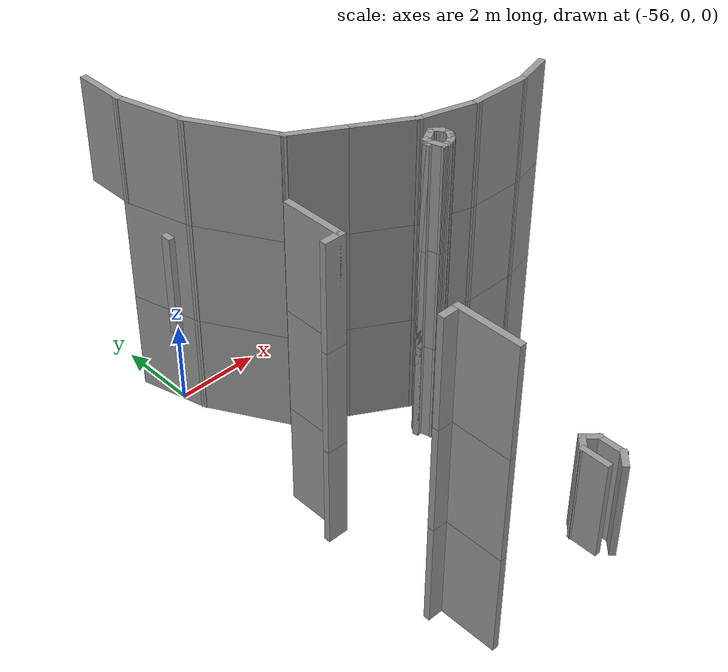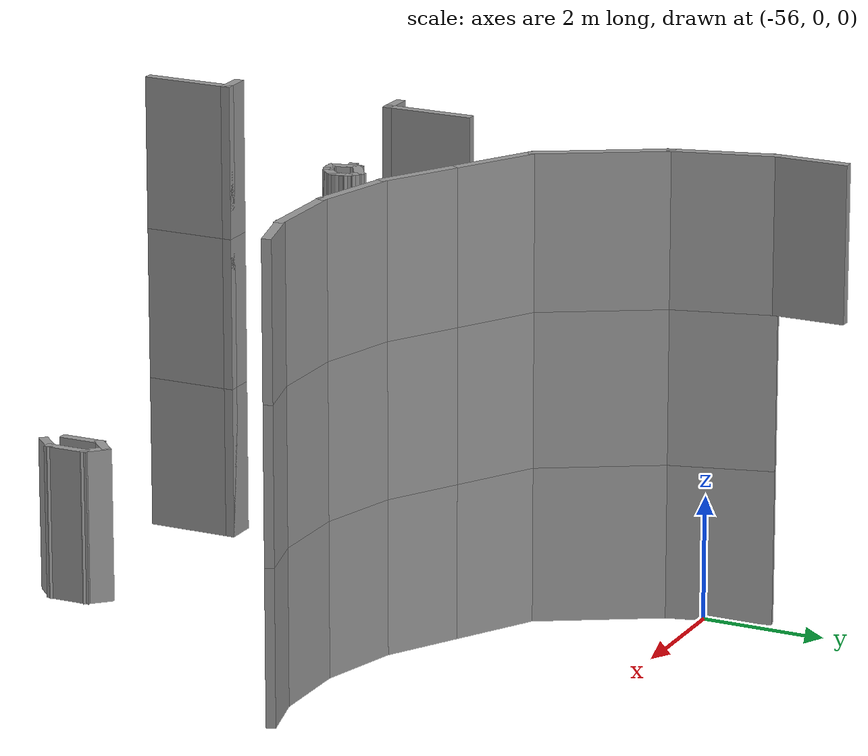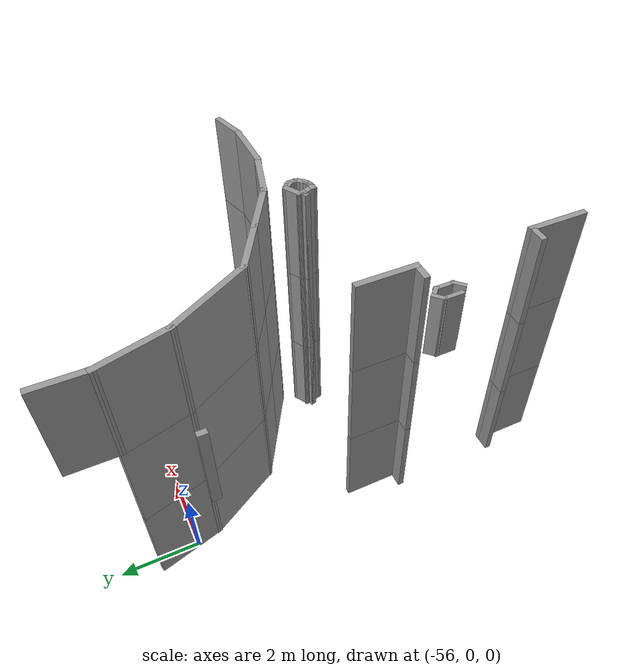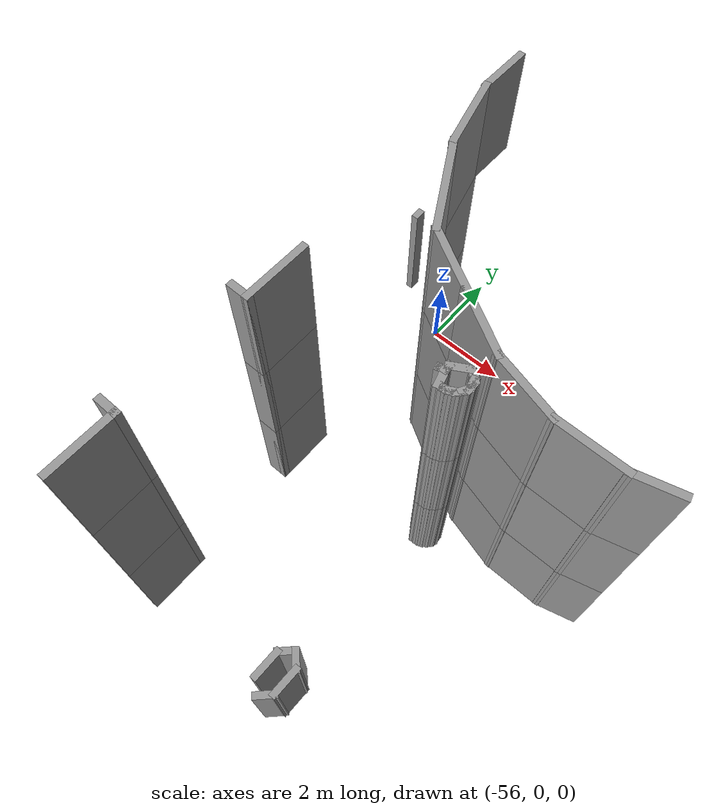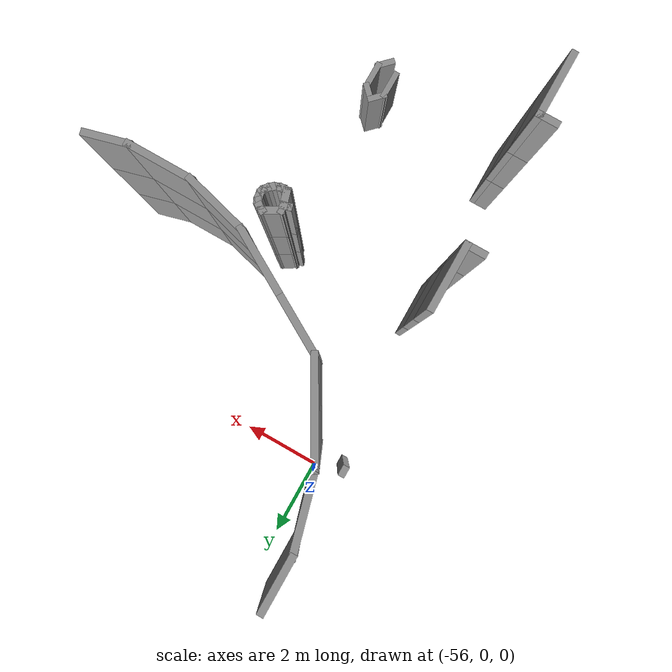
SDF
<sdf version="1.7">
 <model name="mapagazebo">
  <pose>-4.67869 9.01252 0 0 -0 0</pose>
  <link name="Wall_1462">
   <collision name="Wall_1462_Collision">
    <geometry><box><size>1.5 0.15 2.5</size></box></geometry>
    <pose>0 0 1.25 0 -0 0</pose>
   </collision>
   <visual name="Wall_1462_Visual">
    <pose>0 0 1.25 0 -0 0</pose>
    <geometry><box><size>1.5 0.15 2.5</size></box></geometry>
    <material>
     <script><uri>file://media/materials/scripts/gazebo.material</uri><name>Gazebo/Grey</name></script>
     <ambient>1 1 1 1</ambient>
    </material>
    <meta><layer>2</layer></meta>
   </visual>
   <pose>-51.5749 -18.0911 5 0 -0 1.5708</pose>
  </link>
  <link name="Wall_1463">
   <collision name="Wall_1463_Collision">
    <geometry><box><size>0.5 0.15 2.5</size></box></geometry>
    <pose>0 0 1.25 0 -0 0</pose>
   </collision>
   <visual name="Wall_1463_Visual">
    <pose>0 0 1.25 0 -0 0</pose>
    <geometry><box><size>0.5 0.15 2.5</size></box></geometry>
    <material>
     <script><uri>file://media/materials/scripts/gazebo.material</uri><name>Gazebo/Grey</name></script>
     <ambient>1 1 1 1</ambient>
    </material>
    <meta><layer>2</layer></meta>
   </visual>
   <pose>-51.7499 -17.4161 5 0 -0 3.14159</pose>
  </link>
  <link name="Wall_1465">
   <collision name="Wall_1465_Collision">
    <geometry><box><size>0.5 0.15 2.5</size></box></geometry>
    <pose>0 0 1.25 0 -0 0</pose>
   </collision>
   <visual name="Wall_1465_Visual">
    <pose>0 0 1.25 0 -0 0</pose>
    <geometry><box><size>0.5 0.15 2.5</size></box></geometry>
    <material>
     <script><uri>file://media/materials/scripts/gazebo.material</uri><name>Gazebo/Grey</name></script>
     <ambient>1 1 1 1</ambient>
    </material>
    <meta><layer>2</layer></meta>
   </visual>
   <pose>-51.7499 -14.5661 5 0 -0 0</pose>
  </link>
  <link name="Wall_1466">
   <collision name="Wall_1466_Collision">
    <geometry><box><size>1.5 0.15 2.5</size></box></geometry>
    <pose>0 0 1.25 0 -0 0</pose>
   </collision>
   <visual name="Wall_1466_Visual">
    <pose>0 0 1.25 0 -0 0</pose>
    <geometry><box><size>1.5 0.15 2.5</size></box></geometry>
    <material>
     <script><uri>file://media/materials/scripts/gazebo.material</uri><name>Gazebo/Grey</name></script>
     <ambient>1 1 1 1</ambient>
    </material>
    <meta><layer>2</layer></meta>
   </visual>
   <pose>-51.5749 -13.8911 5 0 -0 1.5708</pose>
  </link>
  <link name="Wall_1539">
   <collision name="Wall_1539_Collision">
    <geometry><box><size>1.25 0.15 2.5</size></box></geometry>
    <pose>0 0 1.25 0 -0 0</pose>
   </collision>
   <visual name="Wall_1539_Visual">
    <pose>0 0 1.25 0 -0 0</pose>
    <geometry><box><size>1.25 0.15 2.5</size></box></geometry>
    <material>
     <script><uri>file://media/materials/scripts/gazebo.material</uri><name>Gazebo/Grey</name></script>
     <ambient>1 1 1 1</ambient>
    </material>
    <meta><layer>2</layer></meta>
   </visual>
   <pose>-51.5751 -7.4965 5 0 -0 1.5708</pose>
  </link>
  <link name="Wall_1556">
   <collision name="Wall_1556_Collision">
    <geometry><box><size>1.75 0.15 2.5</size></box></geometry>
    <pose>0 0 1.25 0 -0 0</pose>
   </collision>
   <visual name="Wall_1556_Visual">
    <pose>0 0 1.25 0 -0 0</pose>
    <geometry><box><size>1.75 0.15 2.5</size></box></geometry>
    <material>
     <script><uri>file://media/materials/scripts/gazebo.material</uri><name>Gazebo/Grey</name></script>
     <ambient>1 1 1 1</ambient>
    </material>
    <meta><layer>2</layer></meta>
   </visual>
   <pose>-51.368 -8.81924 5 0 -0 -1.309</pose>
  </link>
  <link name="Wall_1557">
   <collision name="Wall_1557_Collision">
    <geometry><box><size>2.25 0.15 2.5</size></box></geometry>
    <pose>0 0 1.25 0 -0 0</pose>
   </collision>
   <visual name="Wall_1557_Visual">
    <pose>0 0 1.25 0 -0 0</pose>
    <geometry><box><size>2.25 0.15 2.5</size></box></geometry>
    <material>
     <script><uri>file://media/materials/scripts/gazebo.material</uri><name>Gazebo/Grey</name></script>
     <ambient>1 1 1 1</ambient>
    </material>
    <meta><layer>2</layer></meta>
   </visual>
   <pose>-50.636 -10.5013 5 0 -0 -1.0472</pose>
  </link>
  <link name="Wall_1558">
   <collision name="Wall_1558_Collision">
    <geometry><box><size>1.5 0.15 2.5</size></box></geometry>
    <pose>0 0 1.25 0 -0 0</pose>
   </collision>
   <visual name="Wall_1558_Visual">
    <pose>0 0 1.25 0 -0 0</pose>
    <geometry><box><size>1.5 0.15 2.5</size></box></geometry>
    <material>
     <script><uri>file://media/materials/scripts/gazebo.material</uri><name>Gazebo/Grey</name></script>
     <ambient>1 1 1 1</ambient>
    </material>
    <meta><layer>2</layer></meta>
   </visual>
   <pose>-49.5264 -11.7481 5 0 -0 -0.523599</pose>
  </link>
  <link name="Wall_1559">
   <collision name="Wall_1559_Collision">
    <geometry><box><size>1.5 0.15 2.5</size></box></geometry>
    <pose>0 0 1.25 0 -0 0</pose>
   </collision>
   <visual name="Wall_1559_Visual">
    <pose>0 0 1.25 0 -0 0</pose>
    <geometry><box><size>1.5 0.15 2.5</size></box></geometry>
    <material>
     <script><uri>file://media/materials/scripts/gazebo.material</uri><name>Gazebo/Grey</name></script>
     <ambient>1 1 1 1</ambient>
    </material>
    <meta><layer>2</layer></meta>
   </visual>
   <pose>-48.3573 -12.4231 5 0 -0 -0.523599</pose>
  </link>
  <link name="Wall_1560">
   <collision name="Wall_1560_Collision">
    <geometry><box><size>1.5 0.15 2.5</size></box></geometry>
    <pose>0 0 1.25 0 -0 0</pose>
   </collision>
   <visual name="Wall_1560_Visual">
    <pose>0 0 1.25 0 -0 0</pose>
    <geometry><box><size>1.5 0.15 2.5</size></box></geometry>
    <material>
     <script><uri>file://media/materials/scripts/gazebo.material</uri><name>Gazebo/Grey</name></script>
     <ambient>1 1 1 1</ambient>
    </material>
    <meta><layer>2</layer></meta>
   </visual>
   <pose>-47.1207 -12.9353 5 0 -0 -0.261799</pose>
  </link>
  <link name="Wall_1561">
   <collision name="Wall_1561_Collision">
    <geometry><box><size>1.5 0.15 2.5</size></box></geometry>
    <pose>0 0 1.25 0 -0 0</pose>
   </collision>
   <visual name="Wall_1561_Visual">
    <pose>0 0 1.25 0 -0 0</pose>
    <geometry><box><size>1.5 0.15 2.5</size></box></geometry>
    <material>
     <script><uri>file://media/materials/scripts/gazebo.material</uri><name>Gazebo/Grey</name></script>
     <ambient>1 1 1 1</ambient>
    </material>
    <meta><layer>2</layer></meta>
   </visual>
   <pose>-45.7937 -13.11 5 0 -0 0</pose>
  </link>
  <link name="Wall_1562">
   <collision name="Wall_1562_Collision">
    <geometry><box><size>1 0.15 2.5</size></box></geometry>
    <pose>0 0 1.25 0 -0 0</pose>
   </collision>
   <visual name="Wall_1562_Visual">
    <pose>0 0 1.25 0 -0 0</pose>
    <geometry><box><size>1 0.15 2.5</size></box></geometry>
    <material>
     <script><uri>file://media/materials/scripts/gazebo.material</uri><name>Gazebo/Grey</name></script>
     <ambient>1 1 1 1</ambient>
    </material>
    <meta><layer>2</layer></meta>
   </visual>
   <pose>-44.7082 -13 5 0 -0 0.261799</pose>
  </link>
  <link name="Wall_1575">
   <collision name="Wall_1575_Collision">
    <geometry><box><size>0.25 0.15 2.5</size></box></geometry>
    <pose>0 0 1.25 0 -0 0</pose>
   </collision>
   <visual name="Wall_1575_Visual">
    <pose>0 0 1.25 0 -0 0</pose>
    <geometry><box><size>0.25 0.15 2.5</size></box></geometry>
    <material>
     <script><uri>file://media/materials/scripts/gazebo.material</uri><name>Gazebo/Grey</name></script>
     <ambient>1 1 1 1</ambient>
    </material>
    <meta><layer>2</layer></meta>
   </visual>
   <pose>-48.2432 -13.4784 5 0 -0 1.5708</pose>
  </link>
  <link name="Wall_1576">
   <collision name="Wall_1576_Collision">
    <geometry><box><size>0.5 0.15 2.5</size></box></geometry>
    <pose>0 0 1.25 0 -0 0</pose>
   </collision>
   <visual name="Wall_1576_Visual">
    <pose>0 0 1.25 0 -0 0</pose>
    <geometry><box><size>0.5 0.15 2.5</size></box></geometry>
    <material>
     <script><uri>file://media/materials/scripts/gazebo.material</uri><name>Gazebo/Grey</name></script>
     <ambient>1 1 1 1</ambient>
    </material>
    <meta><layer>2</layer></meta>
   </visual>
   <pose>-48.0916 -13.3409 5 0 -0 0.523599</pose>
  </link>
  <link name="Wall_1577">
   <collision name="Wall_1577_Collision">
    <geometry><box><size>0.25 0.15 2.5</size></box></geometry>
    <pose>0 0 1.25 0 -0 0</pose>
   </collision>
   <visual name="Wall_1577_Visual">
    <pose>0 0 1.25 0 -0 0</pose>
    <geometry><box><size>0.25 0.15 2.5</size></box></geometry>
    <material>
     <script><uri>file://media/materials/scripts/gazebo.material</uri><name>Gazebo/Grey</name></script>
     <ambient>1 1 1 1</ambient>
    </material>
    <meta><layer>2</layer></meta>
   </visual>
   <pose>-47.8968 -13.2784 5 0 -0 -0.523599</pose>
  </link>
  <link name="Wall_1578">
   <collision name="Wall_1578_Collision">
    <geometry><box><size>0.25 0.15 2.5</size></box></geometry>
    <pose>0 0 1.25 0 -0 0</pose>
   </collision>
   <visual name="Wall_1578_Visual">
    <pose>0 0 1.25 0 -0 0</pose>
    <geometry><box><size>0.25 0.15 2.5</size></box></geometry>
    <material>
     <script><uri>file://media/materials/scripts/gazebo.material</uri><name>Gazebo/Grey</name></script>
     <ambient>1 1 1 1</ambient>
    </material>
    <meta><layer>2</layer></meta>
   </visual>
   <pose>-47.8181 -13.3387 5 0 -0 -0.785398</pose>
  </link>
  <link name="Wall_1579">
   <collision name="Wall_1579_Collision">
    <geometry><box><size>0.25 0.15 2.5</size></box></geometry>
    <pose>0 0 1.25 0 -0 0</pose>
   </collision>
   <visual name="Wall_1579_Visual">
    <pose>0 0 1.25 0 -0 0</pose>
    <geometry><box><size>0.25 0.15 2.5</size></box></geometry>
    <material>
     <script><uri>file://media/materials/scripts/gazebo.material</uri><name>Gazebo/Grey</name></script>
     <ambient>1 1 1 1</ambient>
    </material>
    <meta><layer>2</layer></meta>
   </visual>
   <pose>-47.7698 -13.4224 5 0 -0 -1.309</pose>
  </link>
  <link name="Wall_1580">
   <collision name="Wall_1580_Collision">
    <geometry><box><size>0.25 0.15 2.5</size></box></geometry>
    <pose>0 0 1.25 0 -0 0</pose>
   </collision>
   <visual name="Wall_1580_Visual">
    <pose>0 0 1.25 0 -0 0</pose>
    <geometry><box><size>0.25 0.15 2.5</size></box></geometry>
    <material>
     <script><uri>file://media/materials/scripts/gazebo.material</uri><name>Gazebo/Grey</name></script>
     <ambient>1 1 1 1</ambient>
    </material>
    <meta><layer>2</layer></meta>
   </visual>
   <pose>-47.7569 -13.5207 5 0 -0 -1.5708</pose>
  </link>
  <link name="Wall_1581">
   <collision name="Wall_1581_Collision">
    <geometry><box><size>0.25 0.15 2.5</size></box></geometry>
    <pose>0 0 1.25 0 -0 0</pose>
   </collision>
   <visual name="Wall_1581_Visual">
    <pose>0 0 1.25 0 -0 0</pose>
    <geometry><box><size>0.25 0.15 2.5</size></box></geometry>
    <material>
     <script><uri>file://media/materials/scripts/gazebo.material</uri><name>Gazebo/Grey</name></script>
     <ambient>1 1 1 1</ambient>
    </material>
    <meta><layer>2</layer></meta>
   </visual>
   <pose>-47.7819 -13.614 5 0 -0 -2.0944</pose>
  </link>
  <link name="Wall_1582">
   <collision name="Wall_1582_Collision">
    <geometry><box><size>0.25 0.15 2.5</size></box></geometry>
    <pose>0 0 1.25 0 -0 0</pose>
   </collision>
   <visual name="Wall_1582_Visual">
    <pose>0 0 1.25 0 -0 0</pose>
    <geometry><box><size>0.25 0.15 2.5</size></box></geometry>
    <material>
     <script><uri>file://media/materials/scripts/gazebo.material</uri><name>Gazebo/Grey</name></script>
     <ambient>1 1 1 1</ambient>
    </material>
    <meta><layer>2</layer></meta>
   </visual>
   <pose>-47.8423 -13.6926 5 0 -0 -2.35619</pose>
  </link>
  <link name="Wall_1583">
   <collision name="Wall_1583_Collision">
    <geometry><box><size>0.25 0.15 2.5</size></box></geometry>
    <pose>0 0 1.25 0 -0 0</pose>
   </collision>
   <visual name="Wall_1583_Visual">
    <pose>0 0 1.25 0 -0 0</pose>
    <geometry><box><size>0.25 0.15 2.5</size></box></geometry>
    <material>
     <script><uri>file://media/materials/scripts/gazebo.material</uri><name>Gazebo/Grey</name></script>
     <ambient>1 1 1 1</ambient>
    </material>
    <meta><layer>2</layer></meta>
   </visual>
   <pose>-47.9209 -13.753 5 0 -0 -2.61799</pose>
  </link>
  <link name="Wall_1584">
   <collision name="Wall_1584_Collision">
    <geometry><box><size>0.25 0.15 2.5</size></box></geometry>
    <pose>0 0 1.25 0 -0 0</pose>
   </collision>
   <visual name="Wall_1584_Visual">
    <pose>0 0 1.25 0 -0 0</pose>
    <geometry><box><size>0.25 0.15 2.5</size></box></geometry>
    <material>
     <script><uri>file://media/materials/scripts/gazebo.material</uri><name>Gazebo/Grey</name></script>
     <ambient>1 1 1 1</ambient>
    </material>
    <meta><layer>2</layer></meta>
   </visual>
   <pose>-48.0125 -13.7909 5 0 -0 -2.87979</pose>
  </link>
  <link name="Wall_1585">
   <collision name="Wall_1585_Collision">
    <geometry><box><size>0.25 0.15 2.5</size></box></geometry>
    <pose>0 0 1.25 0 -0 0</pose>
   </collision>
   <visual name="Wall_1585_Visual">
    <pose>0 0 1.25 0 -0 0</pose>
    <geometry><box><size>0.25 0.15 2.5</size></box></geometry>
    <material>
     <script><uri>file://media/materials/scripts/gazebo.material</uri><name>Gazebo/Grey</name></script>
     <ambient>1 1 1 1</ambient>
    </material>
    <meta><layer>2</layer></meta>
   </visual>
   <pose>-48.1108 -13.8039 5 0 -0 3.14159</pose>
  </link>
  <link name="Wall_1586">
   <collision name="Wall_1586_Collision">
    <geometry><box><size>0.437557 0.15 2.5</size></box></geometry>
    <pose>0 0 1.25 0 -0 0</pose>
   </collision>
   <visual name="Wall_1586_Visual">
    <pose>0 0 1.25 0 -0 0</pose>
    <geometry><box><size>0.437557 0.15 2.5</size></box></geometry>
    <material>
     <script><uri>file://media/materials/scripts/gazebo.material</uri><name>Gazebo/Grey</name></script>
     <ambient>1 1 1 1</ambient>
    </material>
    <meta><layer>2</layer></meta>
   </visual>
   <pose>-48.202 -13.6661 5 0 -0 1.86142</pose>
  </link>
  <link name="Wall_1587">
   <collision name="Wall_1587_Collision">
    <geometry><box><size>0.25 0.15 2.5</size></box></geometry>
    <pose>0 0 1.25 0 -0 0</pose>
   </collision>
   <visual name="Wall_1587_Visual">
    <pose>0 0 1.25 0 -0 0</pose>
    <geometry><box><size>0.25 0.15 2.5</size></box></geometry>
    <material>
     <script><uri>file://media/materials/scripts/gazebo.material</uri><name>Gazebo/Grey</name></script>
     <ambient>1 1 1 1</ambient>
    </material>
    <meta><layer>2</layer></meta>
   </visual>
   <pose>-48.2915 -13.5413 5 0 -0 -2.87979</pose>
  </link>
  <link name="Wall_1588">
   <collision name="Wall_1588_Collision">
    <geometry><box><size>0.25 0.15 2.5</size></box></geometry>
    <pose>0 0 1.25 0 -0 0</pose>
   </collision>
   <visual name="Wall_1588_Visual">
    <pose>0 0 1.25 0 -0 0</pose>
    <geometry><box><size>0.25 0.15 2.5</size></box></geometry>
    <material>
     <script><uri>file://media/materials/scripts/gazebo.material</uri><name>Gazebo/Grey</name></script>
     <ambient>1 1 1 1</ambient>
    </material>
    <meta><layer>2</layer></meta>
   </visual>
   <pose>-48.2915 -13.5413 5 0 -0 0.261799</pose>
  </link>
  <link name="Wall_204">
   <collision name="Wall_204_Collision">
    <geometry><box><size>1.75 0.15 2.5</size></box></geometry>
    <pose>0 0 1.25 0 -0 0</pose>
   </collision>
   <visual name="Wall_204_Visual">
    <pose>0 0 1.25 0 -0 0</pose>
    <geometry><box><size>1.75 0.15 2.5</size></box></geometry>
    <material>
     <script><uri>file://media/materials/scripts/gazebo.material</uri><name>Gazebo/Grey</name></script>
     <ambient>1 1 1 1</ambient>
    </material>
    <meta><layer>0</layer></meta>
   </visual>
   <pose>-51.368 -8.81924 0 0 -0 -1.309</pose>
  </link>
  <link name="Wall_207">
   <collision name="Wall_207_Collision">
    <geometry><box><size>2.25 0.15 2.5</size></box></geometry>
    <pose>0 0 1.25 0 -0 0</pose>
   </collision>
   <visual name="Wall_207_Visual">
    <pose>0 0 1.25 0 -0 0</pose>
    <geometry><box><size>2.25 0.15 2.5</size></box></geometry>
    <material>
     <script><uri>file://media/materials/scripts/gazebo.material</uri><name>Gazebo/Grey</name></script>
     <ambient>1 1 1 1</ambient>
    </material>
    <meta><layer>0</layer></meta>
   </visual>
   <pose>-50.636 -10.5013 0 0 -0 -1.0472</pose>
  </link>
  <link name="Wall_213">
   <collision name="Wall_213_Collision">
    <geometry><box><size>1.5 0.15 2.5</size></box></geometry>
    <pose>0 0 1.25 0 -0 0</pose>
   </collision>
   <visual name="Wall_213_Visual">
    <pose>0 0 1.25 0 -0 0</pose>
    <geometry><box><size>1.5 0.15 2.5</size></box></geometry>
    <material>
     <script><uri>file://media/materials/scripts/gazebo.material</uri><name>Gazebo/Grey</name></script>
     <ambient>1 1 1 1</ambient>
    </material>
    <meta><layer>0</layer></meta>
   </visual>
   <pose>-49.5264 -11.7481 0 0 -0 -0.523599</pose>
  </link>
  <link name="Wall_214">
   <collision name="Wall_214_Collision">
    <geometry><box><size>1.5 0.15 2.5</size></box></geometry>
    <pose>0 0 1.25 0 -0 0</pose>
   </collision>
   <visual name="Wall_214_Visual">
    <pose>0 0 1.25 0 -0 0</pose>
    <geometry><box><size>1.5 0.15 2.5</size></box></geometry>
    <material>
     <script><uri>file://media/materials/scripts/gazebo.material</uri><name>Gazebo/Grey</name></script>
     <ambient>1 1 1 1</ambient>
    </material>
    <meta><layer>0</layer></meta>
   </visual>
   <pose>-48.3573 -12.4231 0 0 -0 -0.523599</pose>
  </link>
  <link name="Wall_215">
   <collision name="Wall_215_Collision">
    <geometry><box><size>1.5 0.15 2.5</size></box></geometry>
    <pose>0 0 1.25 0 -0 0</pose>
   </collision>
   <visual name="Wall_215_Visual">
    <pose>0 0 1.25 0 -0 0</pose>
    <geometry><box><size>1.5 0.15 2.5</size></box></geometry>
    <material>
     <script><uri>file://media/materials/scripts/gazebo.material</uri><name>Gazebo/Grey</name></script>
     <ambient>1 1 1 1</ambient>
    </material>
    <meta><layer>0</layer></meta>
   </visual>
   <pose>-47.1207 -12.9353 0 0 -0 -0.261799</pose>
  </link>
  <link name="Wall_216">
   <collision name="Wall_216_Collision">
    <geometry><box><size>1.5 0.15 2.5</size></box></geometry>
    <pose>0 0 1.25 0 -0 0</pose>
   </collision>
   <visual name="Wall_216_Visual">
    <pose>0 0 1.25 0 -0 0</pose>
    <geometry><box><size>1.5 0.15 2.5</size></box></geometry>
    <material>
     <script><uri>file://media/materials/scripts/gazebo.material</uri><name>Gazebo/Grey</name></script>
     <ambient>1 1 1 1</ambient>
    </material>
    <meta><layer>0</layer></meta>
   </visual>
   <pose>-45.7937 -13.11 0 0 -0 0</pose>
  </link>
  <link name="Wall_2162">
   <collision name="Wall_2162_Collision">
    <geometry><box><size>0.75 0.15 2.5</size></box></geometry>
    <pose>0 0 1.25 0 -0 0</pose>
   </collision>
   <visual name="Wall_2162_Visual">
    <pose>0 0 1.25 0 -0 0</pose>
    <geometry><box><size>0.75 0.15 2.5</size></box></geometry>
    <material>
     <script><uri>file://media/materials/scripts/gazebo.material</uri><name>Gazebo/Grey</name></script>
     <ambient>1 1 1 1</ambient>
    </material>
    <meta><layer>0</layer></meta>
   </visual>
   <pose>-48.2706 -18.2652 0 0 -0 1.5708</pose>
  </link>
  <link name="Wall_2163">
   <collision name="Wall_2163_Collision">
    <geometry><box><size>0.5 0.15 2.5</size></box></geometry>
    <pose>0 0 1.25 0 -0 0</pose>
   </collision>
   <visual name="Wall_2163_Visual">
    <pose>0 0 1.25 0 -0 0</pose>
    <geometry><box><size>0.5 0.15 2.5</size></box></geometry>
    <material>
     <script><uri>file://media/materials/scripts/gazebo.material</uri><name>Gazebo/Grey</name></script>
     <ambient>1 1 1 1</ambient>
    </material>
    <meta><layer>0</layer></meta>
   </visual>
   <pose>-48.1469 -17.8415 0 0 -0 0.785398</pose>
  </link>
  <link name="Wall_2164">
   <collision name="Wall_2164_Collision">
    <geometry><box><size>0.5 0.15 2.5</size></box></geometry>
    <pose>0 0 1.25 0 -0 0</pose>
   </collision>
   <visual name="Wall_2164_Visual">
    <pose>0 0 1.25 0 -0 0</pose>
    <geometry><box><size>0.5 0.15 2.5</size></box></geometry>
    <material>
     <script><uri>file://media/materials/scripts/gazebo.material</uri><name>Gazebo/Grey</name></script>
     <ambient>1 1 1 1</ambient>
    </material>
    <meta><layer>0</layer></meta>
   </visual>
   <pose>-47.8994 -17.8415 0 0 -0 -0.785398</pose>
  </link>
  <link name="Wall_2165">
   <collision name="Wall_2165_Collision">
    <geometry><box><size>0.75 0.15 2.5</size></box></geometry>
    <pose>0 0 1.25 0 -0 0</pose>
   </collision>
   <visual name="Wall_2165_Visual">
    <pose>0 0 1.25 0 -0 0</pose>
    <geometry><box><size>0.75 0.15 2.5</size></box></geometry>
    <material>
     <script><uri>file://media/materials/scripts/gazebo.material</uri><name>Gazebo/Grey</name></script>
     <ambient>1 1 1 1</ambient>
    </material>
    <meta><layer>0</layer></meta>
   </visual>
   <pose>-47.7756 -18.2652 0 0 -0 -1.5708</pose>
  </link>
  <link name="Wall_2166">
   <collision name="Wall_2166_Collision">
    <geometry><box><size>0.5 0.15 2.5</size></box></geometry>
    <pose>0 0 1.25 0 -0 0</pose>
   </collision>
   <visual name="Wall_2166_Visual">
    <pose>0 0 1.25 0 -0 0</pose>
    <geometry><box><size>0.5 0.15 2.5</size></box></geometry>
    <material>
     <script><uri>file://media/materials/scripts/gazebo.material</uri><name>Gazebo/Grey</name></script>
     <ambient>1 1 1 1</ambient>
    </material>
    <meta><layer>0</layer></meta>
   </visual>
   <pose>-47.8994 -18.689 0 0 -0 -2.35619</pose>
  </link>
  <link name="Wall_217">
   <collision name="Wall_217_Collision">
    <geometry><box><size>1 0.15 2.5</size></box></geometry>
    <pose>0 0 1.25 0 -0 0</pose>
   </collision>
   <visual name="Wall_217_Visual">
    <pose>0 0 1.25 0 -0 0</pose>
    <geometry><box><size>1 0.15 2.5</size></box></geometry>
    <material>
     <script><uri>file://media/materials/scripts/gazebo.material</uri><name>Gazebo/Grey</name></script>
     <ambient>1 1 1 1</ambient>
    </material>
    <meta><layer>0</layer></meta>
   </visual>
   <pose>-44.7082 -13 0 0 -0 0.261799</pose>
  </link>
  <link name="Wall_233">
   <collision name="Wall_233_Collision">
    <geometry><box><size>0.25 0.15 2.5</size></box></geometry>
    <pose>0 0 1.25 0 -0 0</pose>
   </collision>
   <visual name="Wall_233_Visual">
    <pose>0 0 1.25 0 -0 0</pose>
    <geometry><box><size>0.25 0.15 2.5</size></box></geometry>
    <material>
     <script><uri>file://media/materials/scripts/gazebo.material</uri><name>Gazebo/Grey</name></script>
     <ambient>1 1 1 1</ambient>
    </material>
    <meta><layer>0</layer></meta>
   </visual>
   <pose>-48.2432 -13.4784 0 0 -0 1.5708</pose>
  </link>
  <link name="Wall_234">
   <collision name="Wall_234_Collision">
    <geometry><box><size>0.5 0.15 2.5</size></box></geometry>
    <pose>0 0 1.25 0 -0 0</pose>
   </collision>
   <visual name="Wall_234_Visual">
    <pose>0 0 1.25 0 -0 0</pose>
    <geometry><box><size>0.5 0.15 2.5</size></box></geometry>
    <material>
     <script><uri>file://media/materials/scripts/gazebo.material</uri><name>Gazebo/Grey</name></script>
     <ambient>1 1 1 1</ambient>
    </material>
    <meta><layer>0</layer></meta>
   </visual>
   <pose>-48.0916 -13.3409 0 0 -0 0.523599</pose>
  </link>
  <link name="Wall_235">
   <collision name="Wall_235_Collision">
    <geometry><box><size>0.25 0.15 2.5</size></box></geometry>
    <pose>0 0 1.25 0 -0 0</pose>
   </collision>
   <visual name="Wall_235_Visual">
    <pose>0 0 1.25 0 -0 0</pose>
    <geometry><box><size>0.25 0.15 2.5</size></box></geometry>
    <material>
     <script><uri>file://media/materials/scripts/gazebo.material</uri><name>Gazebo/Grey</name></script>
     <ambient>1 1 1 1</ambient>
    </material>
    <meta><layer>0</layer></meta>
   </visual>
   <pose>-47.8968 -13.2784 0 0 -0 -0.523599</pose>
  </link>
  <link name="Wall_236">
   <collision name="Wall_236_Collision">
    <geometry><box><size>0.25 0.15 2.5</size></box></geometry>
    <pose>0 0 1.25 0 -0 0</pose>
   </collision>
   <visual name="Wall_236_Visual">
    <pose>0 0 1.25 0 -0 0</pose>
    <geometry><box><size>0.25 0.15 2.5</size></box></geometry>
    <material>
     <script><uri>file://media/materials/scripts/gazebo.material</uri><name>Gazebo/Grey</name></script>
     <ambient>1 1 1 1</ambient>
    </material>
    <meta><layer>0</layer></meta>
   </visual>
   <pose>-47.8181 -13.3387 0 0 -0 -0.785398</pose>
  </link>
  <link name="Wall_237">
   <collision name="Wall_237_Collision">
    <geometry><box><size>0.25 0.15 2.5</size></box></geometry>
    <pose>0 0 1.25 0 -0 0</pose>
   </collision>
   <visual name="Wall_237_Visual">
    <pose>0 0 1.25 0 -0 0</pose>
    <geometry><box><size>0.25 0.15 2.5</size></box></geometry>
    <material>
     <script><uri>file://media/materials/scripts/gazebo.material</uri><name>Gazebo/Grey</name></script>
     <ambient>1 1 1 1</ambient>
    </material>
    <meta><layer>0</layer></meta>
   </visual>
   <pose>-47.7698 -13.4224 0 0 -0 -1.309</pose>
  </link>
  <link name="Wall_238">
   <collision name="Wall_238_Collision">
    <geometry><box><size>0.25 0.15 2.5</size></box></geometry>
    <pose>0 0 1.25 0 -0 0</pose>
   </collision>
   <visual name="Wall_238_Visual">
    <pose>0 0 1.25 0 -0 0</pose>
    <geometry><box><size>0.25 0.15 2.5</size></box></geometry>
    <material>
     <script><uri>file://media/materials/scripts/gazebo.material</uri><name>Gazebo/Grey</name></script>
     <ambient>1 1 1 1</ambient>
    </material>
    <meta><layer>0</layer></meta>
   </visual>
   <pose>-47.7569 -13.5207 0 0 -0 -1.5708</pose>
  </link>
  <link name="Wall_239">
   <collision name="Wall_239_Collision">
    <geometry><box><size>0.25 0.15 2.5</size></box></geometry>
    <pose>0 0 1.25 0 -0 0</pose>
   </collision>
   <visual name="Wall_239_Visual">
    <pose>0 0 1.25 0 -0 0</pose>
    <geometry><box><size>0.25 0.15 2.5</size></box></geometry>
    <material>
     <script><uri>file://media/materials/scripts/gazebo.material</uri><name>Gazebo/Grey</name></script>
     <ambient>1 1 1 1</ambient>
    </material>
    <meta><layer>0</layer></meta>
   </visual>
   <pose>-47.7819 -13.614 0 0 -0 -2.0944</pose>
  </link>
  <link name="Wall_240">
   <collision name="Wall_240_Collision">
    <geometry><box><size>0.25 0.15 2.5</size></box></geometry>
    <pose>0 0 1.25 0 -0 0</pose>
   </collision>
   <visual name="Wall_240_Visual">
    <pose>0 0 1.25 0 -0 0</pose>
    <geometry><box><size>0.25 0.15 2.5</size></box></geometry>
    <material>
     <script><uri>file://media/materials/scripts/gazebo.material</uri><name>Gazebo/Grey</name></script>
     <ambient>1 1 1 1</ambient>
    </material>
    <meta><layer>0</layer></meta>
   </visual>
   <pose>-47.8422 -13.6926 0 0 -0 -2.35619</pose>
  </link>
  <link name="Wall_241">
   <collision name="Wall_241_Collision">
    <geometry><box><size>0.25 0.15 2.5</size></box></geometry>
    <pose>0 0 1.25 0 -0 0</pose>
   </collision>
   <visual name="Wall_241_Visual">
    <pose>0 0 1.25 0 -0 0</pose>
    <geometry><box><size>0.25 0.15 2.5</size></box></geometry>
    <material>
     <script><uri>file://media/materials/scripts/gazebo.material</uri><name>Gazebo/Grey</name></script>
     <ambient>1 1 1 1</ambient>
    </material>
    <meta><layer>0</layer></meta>
   </visual>
   <pose>-47.9209 -13.753 0 0 -0 -2.61799</pose>
  </link>
  <link name="Wall_242">
   <collision name="Wall_242_Collision">
    <geometry><box><size>0.25 0.15 2.5</size></box></geometry>
    <pose>0 0 1.25 0 -0 0</pose>
   </collision>
   <visual name="Wall_242_Visual">
    <pose>0 0 1.25 0 -0 0</pose>
    <geometry><box><size>0.25 0.15 2.5</size></box></geometry>
    <material>
     <script><uri>file://media/materials/scripts/gazebo.material</uri><name>Gazebo/Grey</name></script>
     <ambient>1 1 1 1</ambient>
    </material>
    <meta><layer>0</layer></meta>
   </visual>
   <pose>-48.0125 -13.7909 0 0 -0 -2.87979</pose>
  </link>
  <link name="Wall_243">
   <collision name="Wall_243_Collision">
    <geometry><box><size>0.25 0.15 2.5</size></box></geometry>
    <pose>0 0 1.25 0 -0 0</pose>
   </collision>
   <visual name="Wall_243_Visual">
    <pose>0 0 1.25 0 -0 0</pose>
    <geometry><box><size>0.25 0.15 2.5</size></box></geometry>
    <material>
     <script><uri>file://media/materials/scripts/gazebo.material</uri><name>Gazebo/Grey</name></script>
     <ambient>1 1 1 1</ambient>
    </material>
    <meta><layer>0</layer></meta>
   </visual>
   <pose>-48.1108 -13.8039 0 0 -0 3.14159</pose>
  </link>
  <link name="Wall_244">
   <collision name="Wall_244_Collision">
    <geometry><box><size>0.437557 0.15 2.5</size></box></geometry>
    <pose>0 0 1.25 0 -0 0</pose>
   </collision>
   <visual name="Wall_244_Visual">
    <pose>0 0 1.25 0 -0 0</pose>
    <geometry><box><size>0.437557 0.15 2.5</size></box></geometry>
    <material>
     <script><uri>file://media/materials/scripts/gazebo.material</uri><name>Gazebo/Grey</name></script>
     <ambient>1 1 1 1</ambient>
    </material>
    <meta><layer>0</layer></meta>
   </visual>
   <pose>-48.202 -13.6661 0 0 -0 1.86142</pose>
  </link>
  <link name="Wall_245">
   <collision name="Wall_245_Collision">
    <geometry><box><size>0.25 0.15 2.5</size></box></geometry>
    <pose>0 0 1.25 0 -0 0</pose>
   </collision>
   <visual name="Wall_245_Visual">
    <pose>0 0 1.25 0 -0 0</pose>
    <geometry><box><size>0.25 0.15 2.5</size></box></geometry>
    <material>
     <script><uri>file://media/materials/scripts/gazebo.material</uri><name>Gazebo/Grey</name></script>
     <ambient>1 1 1 1</ambient>
    </material>
    <meta><layer>0</layer></meta>
   </visual>
   <pose>-48.2915 -13.5413 0 0 -0 -2.87979</pose>
  </link>
  <link name="Wall_246">
   <collision name="Wall_246_Collision">
    <geometry><box><size>0.25 0.15 2.5</size></box></geometry>
    <pose>0 0 1.25 0 -0 0</pose>
   </collision>
   <visual name="Wall_246_Visual">
    <pose>0 0 1.25 0 -0 0</pose>
    <geometry><box><size>0.25 0.15 2.5</size></box></geometry>
    <material>
     <script><uri>file://media/materials/scripts/gazebo.material</uri><name>Gazebo/Grey</name></script>
     <ambient>1 1 1 1</ambient>
    </material>
    <meta><layer>0</layer></meta>
   </visual>
   <pose>-48.2915 -13.5413 0 0 -0 0.261799</pose>
  </link>
  <link name="Wall_838">
   <collision name="Wall_838_Collision">
    <geometry><box><size>1.5 0.15 2.5</size></box></geometry>
    <pose>0 0 1.25 0 -0 0</pose>
   </collision>
   <visual name="Wall_838_Visual">
    <pose>0 0 1.25 0 -0 0</pose>
    <geometry><box><size>1.5 0.15 2.5</size></box></geometry>
    <material>
     <script><uri>file://media/materials/scripts/gazebo.material</uri><name>Gazebo/Grey</name></script>
     <ambient>1 1 1 1</ambient>
    </material>
    <meta><layer>1</layer></meta>
   </visual>
   <pose>-51.5749 -18.0911 2.5 0 -0 1.5708</pose>
  </link>
  <link name="Wall_839">
   <collision name="Wall_839_Collision">
    <geometry><box><size>0.5 0.15 2.5</size></box></geometry>
    <pose>0 0 1.25 0 -0 0</pose>
   </collision>
   <visual name="Wall_839_Visual">
    <pose>0 0 1.25 0 -0 0</pose>
    <geometry><box><size>0.5 0.15 2.5</size></box></geometry>
    <material>
     <script><uri>file://media/materials/scripts/gazebo.material</uri><name>Gazebo/Grey</name></script>
     <ambient>1 1 1 1</ambient>
    </material>
    <meta><layer>1</layer></meta>
   </visual>
   <pose>-51.7499 -17.4161 2.5 0 -0 3.14159</pose>
  </link>
  <link name="Wall_841">
   <collision name="Wall_841_Collision">
    <geometry><box><size>0.5 0.15 2.5</size></box></geometry>
    <pose>0 0 1.25 0 -0 0</pose>
   </collision>
   <visual name="Wall_841_Visual">
    <pose>0 0 1.25 0 -0 0</pose>
    <geometry><box><size>0.5 0.15 2.5</size></box></geometry>
    <material>
     <script><uri>file://media/materials/scripts/gazebo.material</uri><name>Gazebo/Grey</name></script>
     <ambient>1 1 1 1</ambient>
    </material>
    <meta><layer>1</layer></meta>
   </visual>
   <pose>-51.7499 -14.5661 2.5 0 -0 0</pose>
  </link>
  <link name="Wall_842">
   <collision name="Wall_842_Collision">
    <geometry><box><size>1.5 0.15 2.5</size></box></geometry>
    <pose>0 0 1.25 0 -0 0</pose>
   </collision>
   <visual name="Wall_842_Visual">
    <pose>0 0 1.25 0 -0 0</pose>
    <geometry><box><size>1.5 0.15 2.5</size></box></geometry>
    <material>
     <script><uri>file://media/materials/scripts/gazebo.material</uri><name>Gazebo/Grey</name></script>
     <ambient>1 1 1 1</ambient>
    </material>
    <meta><layer>1</layer></meta>
   </visual>
   <pose>-51.5749 -13.8911 2.5 0 -0 1.5708</pose>
  </link>
  <link name="Wall_90">
   <collision name="Wall_90_Collision">
    <geometry><box><size>1.5 0.15 2.5</size></box></geometry>
    <pose>0 0 1.25 0 -0 0</pose>
   </collision>
   <visual name="Wall_90_Visual">
    <pose>0 0 1.25 0 -0 0</pose>
    <geometry><box><size>1.5 0.15 2.5</size></box></geometry>
    <material>
     <script><uri>file://media/materials/scripts/gazebo.material</uri><name>Gazebo/Grey</name></script>
     <ambient>1 1 1 1</ambient>
    </material>
    <meta><layer>0</layer></meta>
   </visual>
   <pose>-51.5749 -18.0911 0 0 -0 1.5708</pose>
  </link>
  <link name="Wall_91">
   <collision name="Wall_91_Collision">
    <geometry><box><size>0.5 0.15 2.5</size></box></geometry>
    <pose>0 0 1.25 0 -0 0</pose>
   </collision>
   <visual name="Wall_91_Visual">
    <pose>0 0 1.25 0 -0 0</pose>
    <geometry><box><size>0.5 0.15 2.5</size></box></geometry>
    <material>
     <script><uri>file://media/materials/scripts/gazebo.material</uri><name>Gazebo/Grey</name></script>
     <ambient>1 1 1 1</ambient>
    </material>
    <meta><layer>0</layer></meta>
   </visual>
   <pose>-51.7499 -17.4161 0 0 -0 3.14159</pose>
  </link>
  <link name="Wall_93">
   <collision name="Wall_93_Collision">
    <geometry><box><size>0.5 0.15 2.5</size></box></geometry>
    <pose>0 0 1.25 0 -0 0</pose>
   </collision>
   <visual name="Wall_93_Visual">
    <pose>0 0 1.25 0 -0 0</pose>
    <geometry><box><size>0.5 0.15 2.5</size></box></geometry>
    <material>
     <script><uri>file://media/materials/scripts/gazebo.material</uri><name>Gazebo/Grey</name></script>
     <ambient>1 1 1 1</ambient>
    </material>
    <meta><layer>0</layer></meta>
   </visual>
   <pose>-51.7499 -14.5661 0 0 -0 0</pose>
  </link>
  <link name="Wall_932">
   <collision name="Wall_932_Collision">
    <geometry><box><size>1.75 0.15 2.5</size></box></geometry>
    <pose>0 0 1.25 0 -0 0</pose>
   </collision>
   <visual name="Wall_932_Visual">
    <pose>0 0 1.25 0 -0 0</pose>
    <geometry><box><size>1.75 0.15 2.5</size></box></geometry>
    <material>
     <script><uri>file://media/materials/scripts/gazebo.material</uri><name>Gazebo/Grey</name></script>
     <ambient>1 1 1 1</ambient>
    </material>
    <meta><layer>1</layer></meta>
   </visual>
   <pose>-51.368 -8.81924 2.5 0 -0 -1.309</pose>
  </link>
  <link name="Wall_933">
   <collision name="Wall_933_Collision">
    <geometry><box><size>2.25 0.15 2.5</size></box></geometry>
    <pose>0 0 1.25 0 -0 0</pose>
   </collision>
   <visual name="Wall_933_Visual">
    <pose>0 0 1.25 0 -0 0</pose>
    <geometry><box><size>2.25 0.15 2.5</size></box></geometry>
    <material>
     <script><uri>file://media/materials/scripts/gazebo.material</uri><name>Gazebo/Grey</name></script>
     <ambient>1 1 1 1</ambient>
    </material>
    <meta><layer>1</layer></meta>
   </visual>
   <pose>-50.636 -10.5013 2.5 0 -0 -1.0472</pose>
  </link>
  <link name="Wall_934">
   <collision name="Wall_934_Collision">
    <geometry><box><size>1.5 0.15 2.5</size></box></geometry>
    <pose>0 0 1.25 0 -0 0</pose>
   </collision>
   <visual name="Wall_934_Visual">
    <pose>0 0 1.25 0 -0 0</pose>
    <geometry><box><size>1.5 0.15 2.5</size></box></geometry>
    <material>
     <script><uri>file://media/materials/scripts/gazebo.material</uri><name>Gazebo/Grey</name></script>
     <ambient>1 1 1 1</ambient>
    </material>
    <meta><layer>1</layer></meta>
   </visual>
   <pose>-49.5264 -11.7481 2.5 0 -0 -0.523599</pose>
  </link>
  <link name="Wall_935">
   <collision name="Wall_935_Collision">
    <geometry><box><size>1.5 0.15 2.5</size></box></geometry>
    <pose>0 0 1.25 0 -0 0</pose>
   </collision>
   <visual name="Wall_935_Visual">
    <pose>0 0 1.25 0 -0 0</pose>
    <geometry><box><size>1.5 0.15 2.5</size></box></geometry>
    <material>
     <script><uri>file://media/materials/scripts/gazebo.material</uri><name>Gazebo/Grey</name></script>
     <ambient>1 1 1 1</ambient>
    </material>
    <meta><layer>1</layer></meta>
   </visual>
   <pose>-48.3573 -12.4231 2.5 0 -0 -0.523599</pose>
  </link>
  <link name="Wall_936">
   <collision name="Wall_936_Collision">
    <geometry><box><size>1.5 0.15 2.5</size></box></geometry>
    <pose>0 0 1.25 0 -0 0</pose>
   </collision>
   <visual name="Wall_936_Visual">
    <pose>0 0 1.25 0 -0 0</pose>
    <geometry><box><size>1.5 0.15 2.5</size></box></geometry>
    <material>
     <script><uri>file://media/materials/scripts/gazebo.material</uri><name>Gazebo/Grey</name></script>
     <ambient>1 1 1 1</ambient>
    </material>
    <meta><layer>1</layer></meta>
   </visual>
   <pose>-47.1207 -12.9353 2.5 0 -0 -0.261799</pose>
  </link>
  <link name="Wall_937">
   <collision name="Wall_937_Collision">
    <geometry><box><size>1.5 0.15 2.5</size></box></geometry>
    <pose>0 0 1.25 0 -0 0</pose>
   </collision>
   <visual name="Wall_937_Visual">
    <pose>0 0 1.25 0 -0 0</pose>
    <geometry><box><size>1.5 0.15 2.5</size></box></geometry>
    <material>
     <script><uri>file://media/materials/scripts/gazebo.material</uri><name>Gazebo/Grey</name></script>
     <ambient>1 1 1 1</ambient>
    </material>
    <meta><layer>1</layer></meta>
   </visual>
   <pose>-45.7937 -13.11 2.5 0 -0 0</pose>
  </link>
  <link name="Wall_938">
   <collision name="Wall_938_Collision">
    <geometry><box><size>1 0.15 2.5</size></box></geometry>
    <pose>0 0 1.25 0 -0 0</pose>
   </collision>
   <visual name="Wall_938_Visual">
    <pose>0 0 1.25 0 -0 0</pose>
    <geometry><box><size>1 0.15 2.5</size></box></geometry>
    <material>
     <script><uri>file://media/materials/scripts/gazebo.material</uri><name>Gazebo/Grey</name></script>
     <ambient>1 1 1 1</ambient>
    </material>
    <meta><layer>1</layer></meta>
   </visual>
   <pose>-44.7082 -13 2.5 0 -0 0.261799</pose>
  </link>
  <link name="Wall_94">
   <collision name="Wall_94_Collision">
    <geometry><box><size>1.5 0.15 2.5</size></box></geometry>
    <pose>0 0 1.25 0 -0 0</pose>
   </collision>
   <visual name="Wall_94_Visual">
    <pose>0 0 1.25 0 -0 0</pose>
    <geometry><box><size>1.5 0.15 2.5</size></box></geometry>
    <material>
     <script><uri>file://media/materials/scripts/gazebo.material</uri><name>Gazebo/Grey</name></script>
     <ambient>1 1 1 1</ambient>
    </material>
    <meta><layer>0</layer></meta>
   </visual>
   <pose>-51.5749 -13.8911 0 0 -0 1.5708</pose>
  </link>
  <link name="Wall_946">
   <collision name="Wall_946_Collision">
    <geometry><box><size>0.25 0.15 2.5</size></box></geometry>
    <pose>0 0 1.25 0 -0 0</pose>
   </collision>
   <visual name="Wall_946_Visual">
    <pose>0 0 1.25 0 -0 0</pose>
    <geometry><box><size>0.25 0.15 2.5</size></box></geometry>
    <material>
     <script><uri>file://media/materials/scripts/gazebo.material</uri><name>Gazebo/Grey</name></script>
     <ambient>1 1 1 1</ambient>
    </material>
    <meta><layer>1</layer></meta>
   </visual>
   <pose>-51.7886 -9.6284 2.5 0 -0 1.5708</pose>
  </link>
  <link name="Wall_951">
   <collision name="Wall_951_Collision">
    <geometry><box><size>0.25 0.15 2.5</size></box></geometry>
    <pose>0 0 1.25 0 -0 0</pose>
   </collision>
   <visual name="Wall_951_Visual">
    <pose>0 0 1.25 0 -0 0</pose>
    <geometry><box><size>0.25 0.15 2.5</size></box></geometry>
    <material>
     <script><uri>file://media/materials/scripts/gazebo.material</uri><name>Gazebo/Grey</name></script>
     <ambient>1 1 1 1</ambient>
    </material>
    <meta><layer>1</layer></meta>
   </visual>
   <pose>-48.2432 -13.4784 2.5 0 -0 1.5708</pose>
  </link>
  <link name="Wall_952">
   <collision name="Wall_952_Collision">
    <geometry><box><size>0.5 0.15 2.5</size></box></geometry>
    <pose>0 0 1.25 0 -0 0</pose>
   </collision>
   <visual name="Wall_952_Visual">
    <pose>0 0 1.25 0 -0 0</pose>
    <geometry><box><size>0.5 0.15 2.5</size></box></geometry>
    <material>
     <script><uri>file://media/materials/scripts/gazebo.material</uri><name>Gazebo/Grey</name></script>
     <ambient>1 1 1 1</ambient>
    </material>
    <meta><layer>1</layer></meta>
   </visual>
   <pose>-48.0916 -13.3409 2.5 0 -0 0.523599</pose>
  </link>
  <link name="Wall_953">
   <collision name="Wall_953_Collision">
    <geometry><box><size>0.25 0.15 2.5</size></box></geometry>
    <pose>0 0 1.25 0 -0 0</pose>
   </collision>
   <visual name="Wall_953_Visual">
    <pose>0 0 1.25 0 -0 0</pose>
    <geometry><box><size>0.25 0.15 2.5</size></box></geometry>
    <material>
     <script><uri>file://media/materials/scripts/gazebo.material</uri><name>Gazebo/Grey</name></script>
     <ambient>1 1 1 1</ambient>
    </material>
    <meta><layer>1</layer></meta>
   </visual>
   <pose>-47.8968 -13.2784 2.5 0 -0 -0.523599</pose>
  </link>
  <link name="Wall_954">
   <collision name="Wall_954_Collision">
    <geometry><box><size>0.25 0.15 2.5</size></box></geometry>
    <pose>0 0 1.25 0 -0 0</pose>
   </collision>
   <visual name="Wall_954_Visual">
    <pose>0 0 1.25 0 -0 0</pose>
    <geometry><box><size>0.25 0.15 2.5</size></box></geometry>
    <material>
     <script><uri>file://media/materials/scripts/gazebo.material</uri><name>Gazebo/Grey</name></script>
     <ambient>1 1 1 1</ambient>
    </material>
    <meta><layer>1</layer></meta>
   </visual>
   <pose>-47.8181 -13.3387 2.5 0 -0 -0.785398</pose>
  </link>
  <link name="Wall_955">
   <collision name="Wall_955_Collision">
    <geometry><box><size>0.25 0.15 2.5</size></box></geometry>
    <pose>0 0 1.25 0 -0 0</pose>
   </collision>
   <visual name="Wall_955_Visual">
    <pose>0 0 1.25 0 -0 0</pose>
    <geometry><box><size>0.25 0.15 2.5</size></box></geometry>
    <material>
     <script><uri>file://media/materials/scripts/gazebo.material</uri><name>Gazebo/Grey</name></script>
     <ambient>1 1 1 1</ambient>
    </material>
    <meta><layer>1</layer></meta>
   </visual>
   <pose>-47.7698 -13.4224 2.5 0 -0 -1.309</pose>
  </link>
  <link name="Wall_956">
   <collision name="Wall_956_Collision">
    <geometry><box><size>0.25 0.15 2.5</size></box></geometry>
    <pose>0 0 1.25 0 -0 0</pose>
   </collision>
   <visual name="Wall_956_Visual">
    <pose>0 0 1.25 0 -0 0</pose>
    <geometry><box><size>0.25 0.15 2.5</size></box></geometry>
    <material>
     <script><uri>file://media/materials/scripts/gazebo.material</uri><name>Gazebo/Grey</name></script>
     <ambient>1 1 1 1</ambient>
    </material>
    <meta><layer>1</layer></meta>
   </visual>
   <pose>-47.7569 -13.5207 2.5 0 -0 -1.5708</pose>
  </link>
  <link name="Wall_957">
   <collision name="Wall_957_Collision">
    <geometry><box><size>0.25 0.15 2.5</size></box></geometry>
    <pose>0 0 1.25 0 -0 0</pose>
   </collision>
   <visual name="Wall_957_Visual">
    <pose>0 0 1.25 0 -0 0</pose>
    <geometry><box><size>0.25 0.15 2.5</size></box></geometry>
    <material>
     <script><uri>file://media/materials/scripts/gazebo.material</uri><name>Gazebo/Grey</name></script>
     <ambient>1 1 1 1</ambient>
    </material>
    <meta><layer>1</layer></meta>
   </visual>
   <pose>-47.7819 -13.614 2.5 0 -0 -2.0944</pose>
  </link>
  <link name="Wall_958">
   <collision name="Wall_958_Collision">
    <geometry><box><size>0.25 0.15 2.5</size></box></geometry>
    <pose>0 0 1.25 0 -0 0</pose>
   </collision>
   <visual name="Wall_958_Visual">
    <pose>0 0 1.25 0 -0 0</pose>
    <geometry><box><size>0.25 0.15 2.5</size></box></geometry>
    <material>
     <script><uri>file://media/materials/scripts/gazebo.material</uri><name>Gazebo/Grey</name></script>
     <ambient>1 1 1 1</ambient>
    </material>
    <meta><layer>1</layer></meta>
   </visual>
   <pose>-47.8423 -13.6926 2.5 0 -0 -2.35619</pose>
  </link>
  <link name="Wall_959">
   <collision name="Wall_959_Collision">
    <geometry><box><size>0.25 0.15 2.5</size></box></geometry>
    <pose>0 0 1.25 0 -0 0</pose>
   </collision>
   <visual name="Wall_959_Visual">
    <pose>0 0 1.25 0 -0 0</pose>
    <geometry><box><size>0.25 0.15 2.5</size></box></geometry>
    <material>
     <script><uri>file://media/materials/scripts/gazebo.material</uri><name>Gazebo/Grey</name></script>
     <ambient>1 1 1 1</ambient>
    </material>
    <meta><layer>1</layer></meta>
   </visual>
   <pose>-47.9209 -13.753 2.5 0 -0 -2.61799</pose>
  </link>
  <link name="Wall_960">
   <collision name="Wall_960_Collision">
    <geometry><box><size>0.25 0.15 2.5</size></box></geometry>
    <pose>0 0 1.25 0 -0 0</pose>
   </collision>
   <visual name="Wall_960_Visual">
    <pose>0 0 1.25 0 -0 0</pose>
    <geometry><box><size>0.25 0.15 2.5</size></box></geometry>
    <material>
     <script><uri>file://media/materials/scripts/gazebo.material</uri><name>Gazebo/Grey</name></script>
     <ambient>1 1 1 1</ambient>
    </material>
    <meta><layer>1</layer></meta>
   </visual>
   <pose>-48.0125 -13.7909 2.5 0 -0 -2.87979</pose>
  </link>
  <link name="Wall_961">
   <collision name="Wall_961_Collision">
    <geometry><box><size>0.25 0.15 2.5</size></box></geometry>
    <pose>0 0 1.25 0 -0 0</pose>
   </collision>
   <visual name="Wall_961_Visual">
    <pose>0 0 1.25 0 -0 0</pose>
    <geometry><box><size>0.25 0.15 2.5</size></box></geometry>
    <material>
     <script><uri>file://media/materials/scripts/gazebo.material</uri><name>Gazebo/Grey</name></script>
     <ambient>1 1 1 1</ambient>
    </material>
    <meta><layer>1</layer></meta>
   </visual>
   <pose>-48.1108 -13.8039 2.5 0 -0 3.14159</pose>
  </link>
  <link name="Wall_962">
   <collision name="Wall_962_Collision">
    <geometry><box><size>0.437557 0.15 2.5</size></box></geometry>
    <pose>0 0 1.25 0 -0 0</pose>
   </collision>
   <visual name="Wall_962_Visual">
    <pose>0 0 1.25 0 -0 0</pose>
    <geometry><box><size>0.437557 0.15 2.5</size></box></geometry>
    <material>
     <script><uri>file://media/materials/scripts/gazebo.material</uri><name>Gazebo/Grey</name></script>
     <ambient>1 1 1 1</ambient>
    </material>
    <meta><layer>1</layer></meta>
   </visual>
   <pose>-48.202 -13.6661 2.5 0 -0 1.86142</pose>
  </link>
  <link name="Wall_963">
   <collision name="Wall_963_Collision">
    <geometry><box><size>0.25 0.15 2.5</size></box></geometry>
    <pose>0 0 1.25 0 -0 0</pose>
   </collision>
   <visual name="Wall_963_Visual">
    <pose>0 0 1.25 0 -0 0</pose>
    <geometry><box><size>0.25 0.15 2.5</size></box></geometry>
    <material>
     <script><uri>file://media/materials/scripts/gazebo.material</uri><name>Gazebo/Grey</name></script>
     <ambient>1 1 1 1</ambient>
    </material>
    <meta><layer>1</layer></meta>
   </visual>
   <pose>-48.2915 -13.5413 2.5 0 -0 -2.87979</pose>
  </link>
  <link name="Wall_964">
   <collision name="Wall_964_Collision">
    <geometry><box><size>0.25 0.15 2.5</size></box></geometry>
    <pose>0 0 1.25 0 -0 0</pose>
   </collision>
   <visual name="Wall_964_Visual">
    <pose>0 0 1.25 0 -0 0</pose>
    <geometry><box><size>0.25 0.15 2.5</size></box></geometry>
    <material>
     <script><uri>file://media/materials/scripts/gazebo.material</uri><name>Gazebo/Grey</name></script>
     <ambient>1 1 1 1</ambient>
    </material>
    <meta><layer>1</layer></meta>
   </visual>
   <pose>-48.2915 -13.5413 2.5 0 -0 0.261799</pose>
  </link>
  <static>1</static>
 </model>
</sdf>
